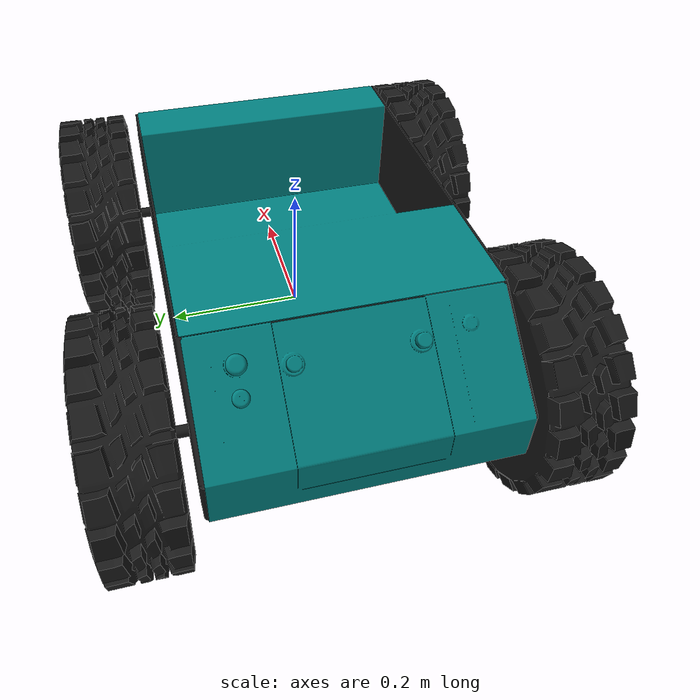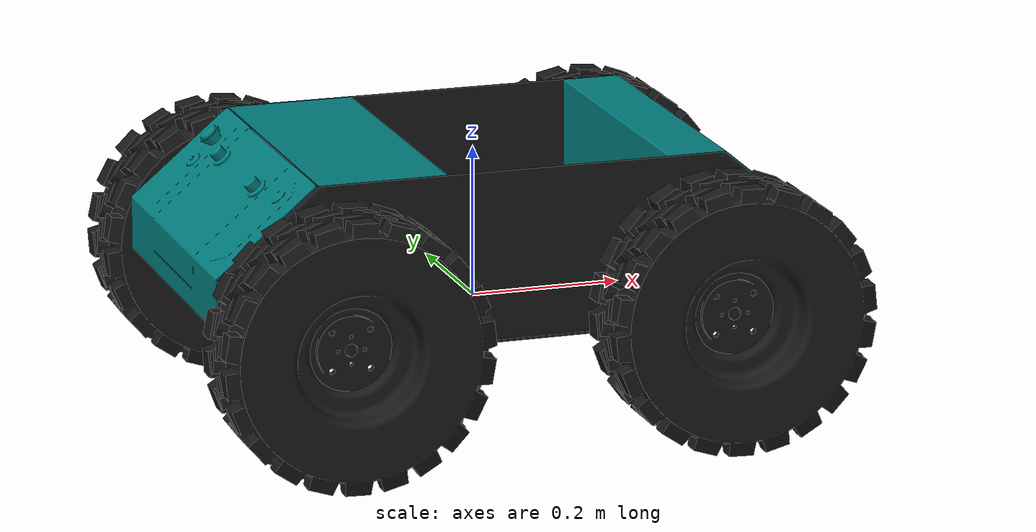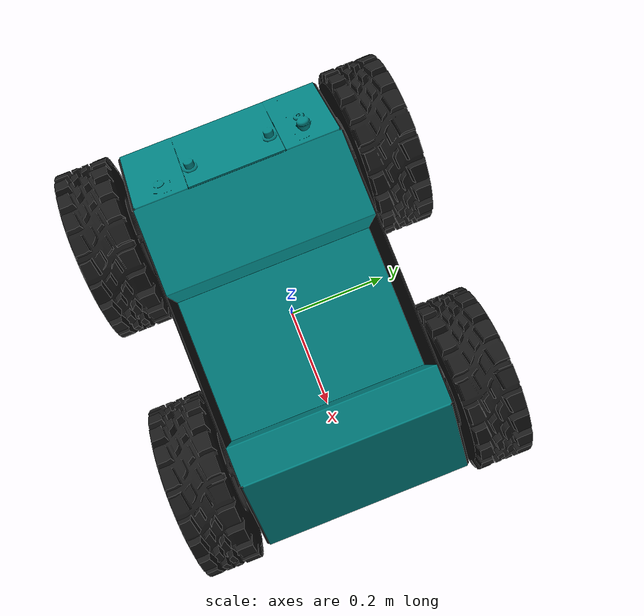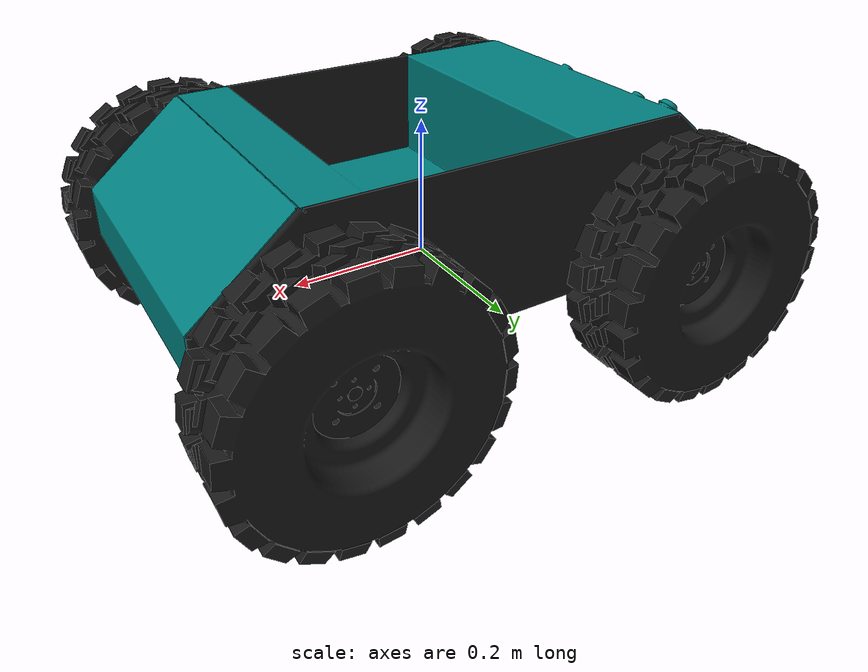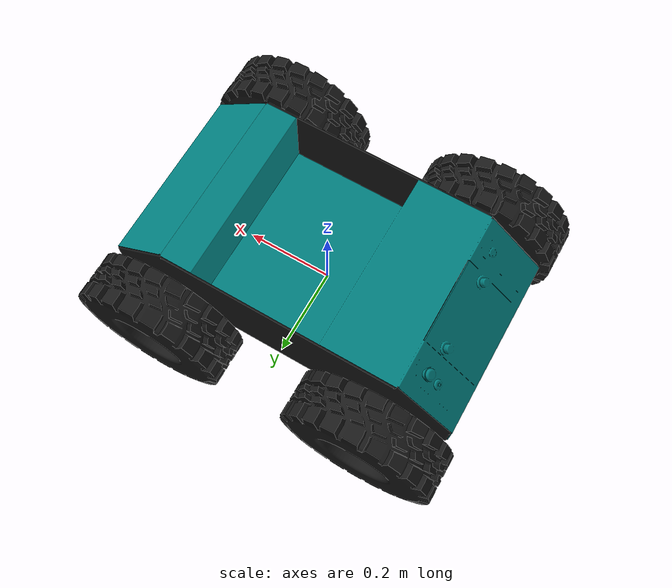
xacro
<?xml version="1.0"?>
<robot xmlns:xacro="http://www.ros.org/wiki/xacro" name="Ground_bot">

  <xacro:arg name="frame_prefix" default=""/>

  <xacro:include filename="$(find swarm)/model/ground_bot.gazebo"/>
  <xacro:include filename="$(find swarm)/model/ground_bot.xacro"/>
  <xacro:include filename="$(find swarm)/model/wheels.xacro"/>
  <xacro:include filename="$(find swarm)/model/lidar.xacro"/>
  <xacro:include filename="$(find swarm)/model/cameras.xacro"/>

  <xacro:ground_bot suffix="$(arg frame_prefix)"/>
  <xacro:wheels suffix="$(arg frame_prefix)"/>

  <!-- Load ground-bot Gazebo plugins (IMU, Sensors, DiffDrive) -->
  <xacro:ground_bot_gazebo suffix="$(arg frame_prefix)"/>

</robot>

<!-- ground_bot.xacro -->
<robot xmlns:xacro="http://www.ros.org/wiki/xacro">

  <xacro:macro name="ground_bot" params="suffix">

    <link name="${suffix}base_link"/>

    <link name="${suffix}ground_bot_frame">
      <inertial>
        <origin xyz="0.0 0.0 -0.25" rpy="0 0 0"/>
        <mass value="40.0"/>
        <inertia
          ixx="0.615397"
          ixy="-0.0240585"
          ixz="-0.120749"
          iyy="1.75388"
          iyz="-0.0028322"
          izz="2.03641"/>
      </inertial>

      <collision name="main_frame_collision">
        <origin xyz="0 0 0.12" rpy="0 0 0"/>
        <geometry>
          <box size="0.9874 0.5709 0.05"/>
        </geometry>
      </collision>

      <collision name="frame_bottom_collision">
        <origin xyz="0 0 0.046" rpy="0 0 0"/>
        <geometry>
          <box size="0.80 0.5709 0.095"/>
        </geometry>
      </collision>

      <visual name="main_frame_visual">
        <geometry>
          <mesh filename="package://swarm/meshes/main_frame.stl"/>
        </geometry>
        <material name="black">
          <color rgba="0.1 0.1 0.1 1"/>
        </material>
      </visual>

      <visual name="top_chassis_visual">
        <geometry>
          <mesh filename="package://swarm/meshes/top_chassis.stl"/>
        </geometry>
        <material name="teal">
          <color rgba="0 0.5 0.5 1"/>
        </material>
      </visual>
    </link>

    <joint name="${suffix}base_link_joint" type="fixed">
      <parent link="${suffix}base_link"/>
      <child link="${suffix}ground_bot_frame"/>
      <origin xyz="0 0 0" rpy="0 0 0"/>
    </joint>

    <gazebo reference="${suffix}ground_bot_frame">
      <sensor name="imu" type="imu">
        <always_on>true</always_on>
        <update_rate>100</update_rate>
        <visualize>true</visualize>
        <topic>imu</topic>
      </sensor>
    </gazebo>

  </xacro:macro>

</robot>

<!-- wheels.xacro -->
<robot xmlns:xacro="http://www.ros.org/wiki/xacro">

  <xacro:macro name="wheel_link" params="name mesh scale mass ixx iyy izz">
    <link name="${name}">
      <inertial>
        <origin xyz="0 0 0" rpy="0 0 0"/>
        <mass value="${mass}"/>
        <inertia
          ixx="${ixx}"
          ixy="0"
          ixz="0"
          iyy="${iyy}"
          iyz="0"
          izz="${izz}"/>
      </inertial>

      <visual>
        <geometry>
          <mesh filename="package://swarm/meshes/${mesh}" scale="${scale}"/>
        </geometry>
        <material name="black">
          <color rgba="0.1 0.1 0.1 1"/>
        </material>
      </visual>

      <collision>
        <geometry>
          <mesh filename="package://swarm/meshes/${mesh}" scale="${scale}"/>
        </geometry>
      </collision>
    </link>
  </xacro:macro>

  <xacro:macro name="wheels" params="suffix">

    <xacro:wheel_link name="${suffix}front_left_wheel"  mesh="wheel.stl" scale="1 1 1"
                      mass="2.637" ixx="0.0246" iyy="0.04411" izz="0.0246"/>

    <xacro:wheel_link name="${suffix}front_right_wheel" mesh="wheel.stl" scale="1 1 1"
                      mass="2.637" ixx="0.0246" iyy="0.04411" izz="0.0246"/>

    <xacro:wheel_link name="${suffix}rear_left_wheel"   mesh="wheel.stl" scale="1 1 1"
                      mass="2.637" ixx="0.0246" iyy="0.04411" izz="0.0246"/>

    <xacro:wheel_link name="${suffix}rear_right_wheel"  mesh="wheel.stl" scale="1 1 1"
                      mass="2.637" ixx="0.0246" iyy="0.04411" izz="0.0246"/>

    <joint name="${suffix}front_left_wheel_joint" type="revolute">
      <parent link="${suffix}base_link"/>  <child link="${suffix}front_left_wheel"/>
      <origin xyz="0.256 0.2854 0.03282" rpy="0 0 0"/>
      <axis xyz="0 1 0"/>
      <limit lower="-1e16" upper="1e16" effort="20" velocity="50"/>
    </joint>

    <joint name="${suffix}front_right_wheel_joint" type="revolute">
      <parent link="${suffix}base_link"/>
      <child link="${suffix}front_right_wheel"/>
      <origin xyz="0.256 -0.2854 0.03282" rpy="0 0 0"/>
      <axis xyz="0 1 0"/>
      <limit lower="-1e16" upper="1e16" effort="20" velocity="50"/>
    </joint>

    <joint name="${suffix}rear_left_wheel_joint" type="revolute">
      <parent link="${suffix}base_link"/>
      <child link="${suffix}rear_left_wheel"/>
      <origin xyz="-0.256 0.2854 0.03282" rpy="0 0 0"/>
      <axis xyz="0 1 0"/>
      <limit lower="-1e16" upper="1e16" effort="20" velocity="50"/>
    </joint>

    <joint name="${suffix}rear_right_wheel_joint" type="revolute">
      <parent link="${suffix}base_link"/>
      <child link="${suffix}rear_right_wheel"/>
      <origin xyz="-0.256 -0.2854 0.03282" rpy="0 0 0"/>
      <axis xyz="0 1 0"/>
      <limit lower="-1e16" upper="1e16" effort="20" velocity="50"/>
    </joint>

  </xacro:macro>

</robot>
